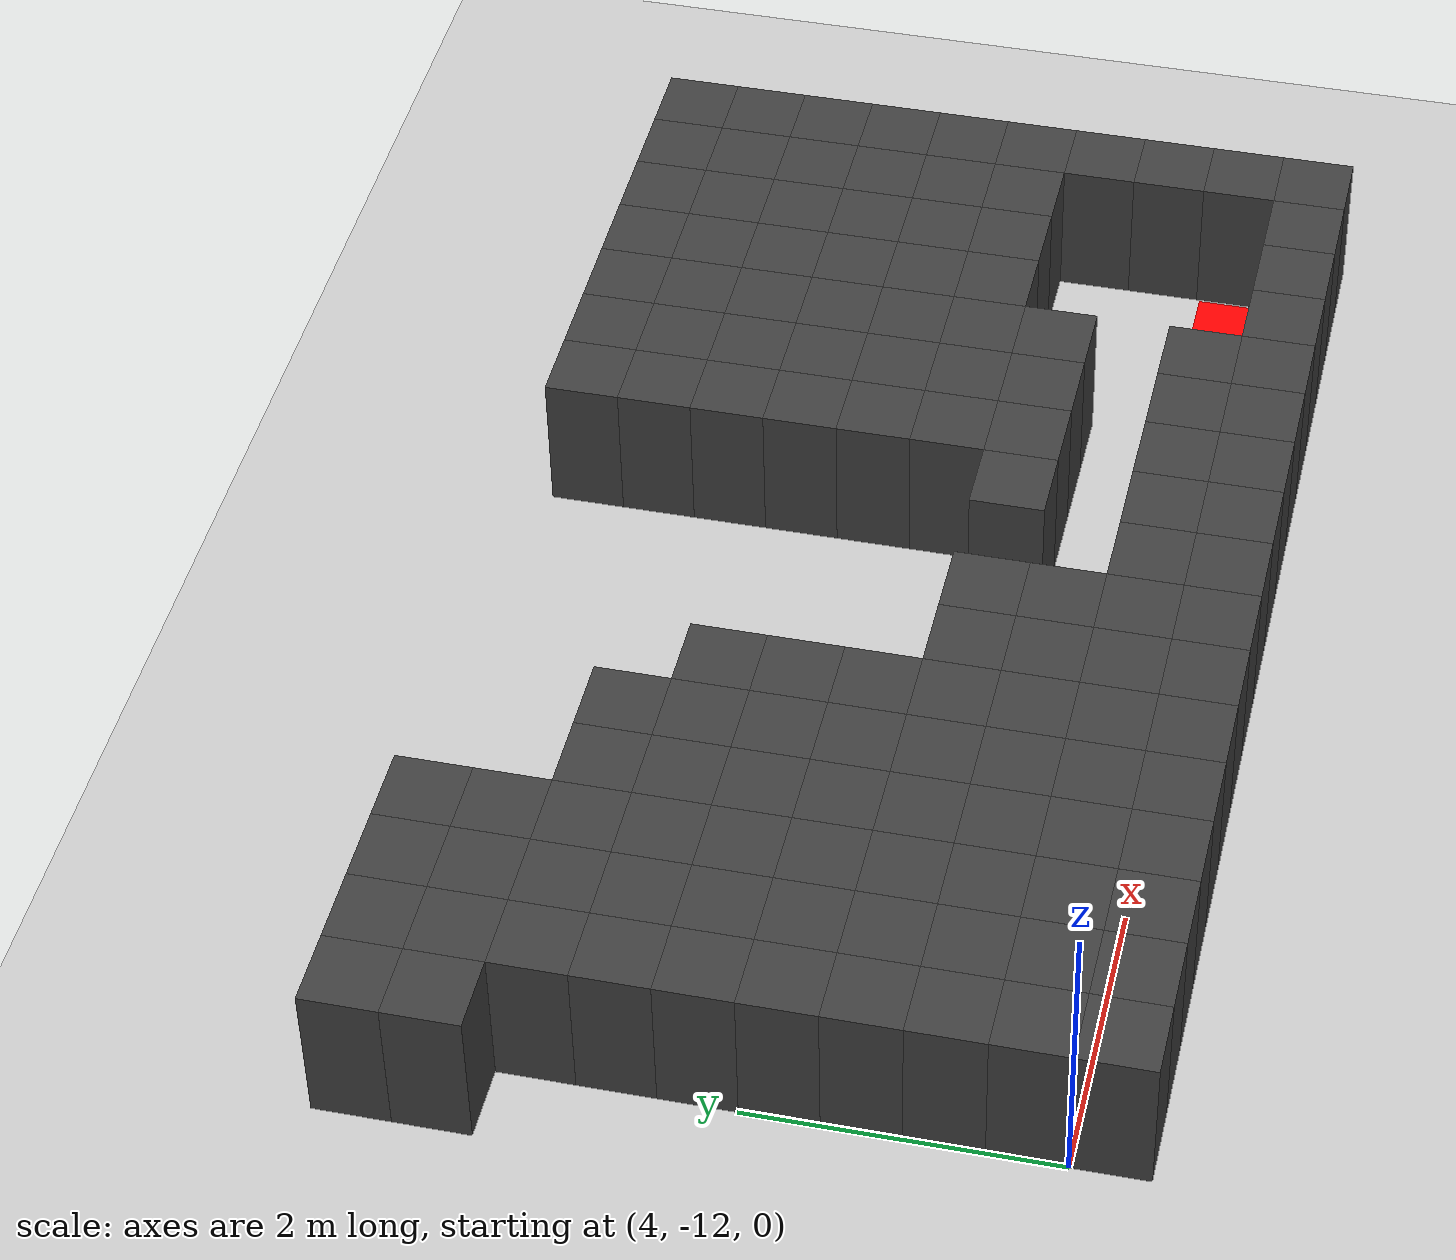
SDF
<sdf version="1.7">
 <world name="map_14980">
  <model name="ground_plane">
   <static>true</static>
   <link name="link">
    <collision name="collision">
     <geometry><plane><normal>0 0 1</normal><size>200 200</size></plane></geometry>
    </collision>
    <visual name="visual">
     <geometry><plane><normal>0 0 1</normal><size>200 200</size></plane></geometry>
     <material><ambient>0.8 0.8 0.8 1</ambient><diffuse>0.8 0.8 0.8 1</diffuse></material>
    </visual>
   </link>
  </model>
  <model name="maze_environment">
   <static>true</static>
   <link name="wall_1472">
    <pose>3.750 -7.750 0.500 0 0 0</pose>
    <collision name="col"><geometry><box><size>0.5 0.5 1.0</size></box></geometry></collision>
    <visual name="vis">
     <geometry><box><size>0.5 0.5 1.0</size></box></geometry>
     <material><ambient>0.15 0.15 0.15 1</ambient><diffuse>0.25 0.25 0.25 1</diffuse></material>
    </visual>
   </link>
   <link name="wall_1473">
    <pose>4.250 -7.750 0.500 0 0 0</pose>
    <collision name="col"><geometry><box><size>0.5 0.5 1.0</size></box></geometry></collision>
    <visual name="vis">
     <geometry><box><size>0.5 0.5 1.0</size></box></geometry>
     <material><ambient>0.15 0.15 0.15 1</ambient><diffuse>0.25 0.25 0.25 1</diffuse></material>
    </visual>
   </link>
   <link name="wall_1474">
    <pose>4.750 -7.750 0.500 0 0 0</pose>
    <collision name="col"><geometry><box><size>0.5 0.5 1.0</size></box></geometry></collision>
    <visual name="vis">
     <geometry><box><size>0.5 0.5 1.0</size></box></geometry>
     <material><ambient>0.15 0.15 0.15 1</ambient><diffuse>0.25 0.25 0.25 1</diffuse></material>
    </visual>
   </link>
   <link name="wall_1475">
    <pose>5.250 -7.750 0.500 0 0 0</pose>
    <collision name="col"><geometry><box><size>0.5 0.5 1.0</size></box></geometry></collision>
    <visual name="vis">
     <geometry><box><size>0.5 0.5 1.0</size></box></geometry>
     <material><ambient>0.15 0.15 0.15 1</ambient><diffuse>0.25 0.25 0.25 1</diffuse></material>
    </visual>
   </link>
   <link name="wall_1476">
    <pose>9.250 -7.750 0.500 0 0 0</pose>
    <collision name="col"><geometry><box><size>0.5 0.5 1.0</size></box></geometry></collision>
    <visual name="vis">
     <geometry><box><size>0.5 0.5 1.0</size></box></geometry>
     <material><ambient>0.15 0.15 0.15 1</ambient><diffuse>0.25 0.25 0.25 1</diffuse></material>
    </visual>
   </link>
   <link name="wall_1477">
    <pose>9.750 -7.750 0.500 0 0 0</pose>
    <collision name="col"><geometry><box><size>0.5 0.5 1.0</size></box></geometry></collision>
    <visual name="vis">
     <geometry><box><size>0.5 0.5 1.0</size></box></geometry>
     <material><ambient>0.15 0.15 0.15 1</ambient><diffuse>0.25 0.25 0.25 1</diffuse></material>
    </visual>
   </link>
   <link name="wall_1478">
    <pose>10.250 -7.750 0.500 0 0 0</pose>
    <collision name="col"><geometry><box><size>0.5 0.5 1.0</size></box></geometry></collision>
    <visual name="vis">
     <geometry><box><size>0.5 0.5 1.0</size></box></geometry>
     <material><ambient>0.15 0.15 0.15 1</ambient><diffuse>0.25 0.25 0.25 1</diffuse></material>
    </visual>
   </link>
   <link name="wall_1479">
    <pose>10.750 -7.750 0.500 0 0 0</pose>
    <collision name="col"><geometry><box><size>0.5 0.5 1.0</size></box></geometry></collision>
    <visual name="vis">
     <geometry><box><size>0.5 0.5 1.0</size></box></geometry>
     <material><ambient>0.15 0.15 0.15 1</ambient><diffuse>0.25 0.25 0.25 1</diffuse></material>
    </visual>
   </link>
   <link name="wall_1480">
    <pose>11.250 -7.750 0.500 0 0 0</pose>
    <collision name="col"><geometry><box><size>0.5 0.5 1.0</size></box></geometry></collision>
    <visual name="vis">
     <geometry><box><size>0.5 0.5 1.0</size></box></geometry>
     <material><ambient>0.15 0.15 0.15 1</ambient><diffuse>0.25 0.25 0.25 1</diffuse></material>
    </visual>
   </link>
   <link name="wall_1481">
    <pose>11.750 -7.750 0.500 0 0 0</pose>
    <collision name="col"><geometry><box><size>0.5 0.5 1.0</size></box></geometry></collision>
    <visual name="vis">
     <geometry><box><size>0.5 0.5 1.0</size></box></geometry>
     <material><ambient>0.15 0.15 0.15 1</ambient><diffuse>0.25 0.25 0.25 1</diffuse></material>
    </visual>
   </link>
   <link name="wall_1482">
    <pose>12.250 -7.750 0.500 0 0 0</pose>
    <collision name="col"><geometry><box><size>0.5 0.5 1.0</size></box></geometry></collision>
    <visual name="vis">
     <geometry><box><size>0.5 0.5 1.0</size></box></geometry>
     <material><ambient>0.15 0.15 0.15 1</ambient><diffuse>0.25 0.25 0.25 1</diffuse></material>
    </visual>
   </link>
   <link name="wall_1496">
    <pose>3.750 -8.250 0.500 0 0 0</pose>
    <collision name="col"><geometry><box><size>0.5 0.5 1.0</size></box></geometry></collision>
    <visual name="vis">
     <geometry><box><size>0.5 0.5 1.0</size></box></geometry>
     <material><ambient>0.15 0.15 0.15 1</ambient><diffuse>0.25 0.25 0.25 1</diffuse></material>
    </visual>
   </link>
   <link name="wall_1497">
    <pose>4.250 -8.250 0.500 0 0 0</pose>
    <collision name="col"><geometry><box><size>0.5 0.5 1.0</size></box></geometry></collision>
    <visual name="vis">
     <geometry><box><size>0.5 0.5 1.0</size></box></geometry>
     <material><ambient>0.15 0.15 0.15 1</ambient><diffuse>0.25 0.25 0.25 1</diffuse></material>
    </visual>
   </link>
   <link name="wall_1498">
    <pose>4.750 -8.250 0.500 0 0 0</pose>
    <collision name="col"><geometry><box><size>0.5 0.5 1.0</size></box></geometry></collision>
    <visual name="vis">
     <geometry><box><size>0.5 0.5 1.0</size></box></geometry>
     <material><ambient>0.15 0.15 0.15 1</ambient><diffuse>0.25 0.25 0.25 1</diffuse></material>
    </visual>
   </link>
   <link name="wall_1499">
    <pose>5.250 -8.250 0.500 0 0 0</pose>
    <collision name="col"><geometry><box><size>0.5 0.5 1.0</size></box></geometry></collision>
    <visual name="vis">
     <geometry><box><size>0.5 0.5 1.0</size></box></geometry>
     <material><ambient>0.15 0.15 0.15 1</ambient><diffuse>0.25 0.25 0.25 1</diffuse></material>
    </visual>
   </link>
   <link name="wall_1500">
    <pose>9.250 -8.250 0.500 0 0 0</pose>
    <collision name="col"><geometry><box><size>0.5 0.5 1.0</size></box></geometry></collision>
    <visual name="vis">
     <geometry><box><size>0.5 0.5 1.0</size></box></geometry>
     <material><ambient>0.15 0.15 0.15 1</ambient><diffuse>0.25 0.25 0.25 1</diffuse></material>
    </visual>
   </link>
   <link name="wall_1501">
    <pose>9.750 -8.250 0.500 0 0 0</pose>
    <collision name="col"><geometry><box><size>0.5 0.5 1.0</size></box></geometry></collision>
    <visual name="vis">
     <geometry><box><size>0.5 0.5 1.0</size></box></geometry>
     <material><ambient>0.15 0.15 0.15 1</ambient><diffuse>0.25 0.25 0.25 1</diffuse></material>
    </visual>
   </link>
   <link name="wall_1502">
    <pose>10.250 -8.250 0.500 0 0 0</pose>
    <collision name="col"><geometry><box><size>0.5 0.5 1.0</size></box></geometry></collision>
    <visual name="vis">
     <geometry><box><size>0.5 0.5 1.0</size></box></geometry>
     <material><ambient>0.15 0.15 0.15 1</ambient><diffuse>0.25 0.25 0.25 1</diffuse></material>
    </visual>
   </link>
   <link name="wall_1503">
    <pose>10.750 -8.250 0.500 0 0 0</pose>
    <collision name="col"><geometry><box><size>0.5 0.5 1.0</size></box></geometry></collision>
    <visual name="vis">
     <geometry><box><size>0.5 0.5 1.0</size></box></geometry>
     <material><ambient>0.15 0.15 0.15 1</ambient><diffuse>0.25 0.25 0.25 1</diffuse></material>
    </visual>
   </link>
   <link name="wall_1504">
    <pose>11.250 -8.250 0.500 0 0 0</pose>
    <collision name="col"><geometry><box><size>0.5 0.5 1.0</size></box></geometry></collision>
    <visual name="vis">
     <geometry><box><size>0.5 0.5 1.0</size></box></geometry>
     <material><ambient>0.15 0.15 0.15 1</ambient><diffuse>0.25 0.25 0.25 1</diffuse></material>
    </visual>
   </link>
   <link name="wall_1505">
    <pose>11.750 -8.250 0.500 0 0 0</pose>
    <collision name="col"><geometry><box><size>0.5 0.5 1.0</size></box></geometry></collision>
    <visual name="vis">
     <geometry><box><size>0.5 0.5 1.0</size></box></geometry>
     <material><ambient>0.15 0.15 0.15 1</ambient><diffuse>0.25 0.25 0.25 1</diffuse></material>
    </visual>
   </link>
   <link name="wall_1506">
    <pose>12.250 -8.250 0.500 0 0 0</pose>
    <collision name="col"><geometry><box><size>0.5 0.5 1.0</size></box></geometry></collision>
    <visual name="vis">
     <geometry><box><size>0.5 0.5 1.0</size></box></geometry>
     <material><ambient>0.15 0.15 0.15 1</ambient><diffuse>0.25 0.25 0.25 1</diffuse></material>
    </visual>
   </link>
   <link name="wall_1521">
    <pose>4.250 -8.750 0.500 0 0 0</pose>
    <collision name="col"><geometry><box><size>0.5 0.5 1.0</size></box></geometry></collision>
    <visual name="vis">
     <geometry><box><size>0.5 0.5 1.0</size></box></geometry>
     <material><ambient>0.15 0.15 0.15 1</ambient><diffuse>0.25 0.25 0.25 1</diffuse></material>
    </visual>
   </link>
   <link name="wall_1522">
    <pose>4.750 -8.750 0.500 0 0 0</pose>
    <collision name="col"><geometry><box><size>0.5 0.5 1.0</size></box></geometry></collision>
    <visual name="vis">
     <geometry><box><size>0.5 0.5 1.0</size></box></geometry>
     <material><ambient>0.15 0.15 0.15 1</ambient><diffuse>0.25 0.25 0.25 1</diffuse></material>
    </visual>
   </link>
   <link name="wall_1523">
    <pose>5.250 -8.750 0.500 0 0 0</pose>
    <collision name="col"><geometry><box><size>0.5 0.5 1.0</size></box></geometry></collision>
    <visual name="vis">
     <geometry><box><size>0.5 0.5 1.0</size></box></geometry>
     <material><ambient>0.15 0.15 0.15 1</ambient><diffuse>0.25 0.25 0.25 1</diffuse></material>
    </visual>
   </link>
   <link name="wall_1524">
    <pose>5.750 -8.750 0.500 0 0 0</pose>
    <collision name="col"><geometry><box><size>0.5 0.5 1.0</size></box></geometry></collision>
    <visual name="vis">
     <geometry><box><size>0.5 0.5 1.0</size></box></geometry>
     <material><ambient>0.15 0.15 0.15 1</ambient><diffuse>0.25 0.25 0.25 1</diffuse></material>
    </visual>
   </link>
   <link name="wall_1525">
    <pose>6.250 -8.750 0.500 0 0 0</pose>
    <collision name="col"><geometry><box><size>0.5 0.5 1.0</size></box></geometry></collision>
    <visual name="vis">
     <geometry><box><size>0.5 0.5 1.0</size></box></geometry>
     <material><ambient>0.15 0.15 0.15 1</ambient><diffuse>0.25 0.25 0.25 1</diffuse></material>
    </visual>
   </link>
   <link name="wall_1526">
    <pose>9.250 -8.750 0.500 0 0 0</pose>
    <collision name="col"><geometry><box><size>0.5 0.5 1.0</size></box></geometry></collision>
    <visual name="vis">
     <geometry><box><size>0.5 0.5 1.0</size></box></geometry>
     <material><ambient>0.15 0.15 0.15 1</ambient><diffuse>0.25 0.25 0.25 1</diffuse></material>
    </visual>
   </link>
   <link name="wall_1527">
    <pose>9.750 -8.750 0.500 0 0 0</pose>
    <collision name="col"><geometry><box><size>0.5 0.5 1.0</size></box></geometry></collision>
    <visual name="vis">
     <geometry><box><size>0.5 0.5 1.0</size></box></geometry>
     <material><ambient>0.15 0.15 0.15 1</ambient><diffuse>0.25 0.25 0.25 1</diffuse></material>
    </visual>
   </link>
   <link name="wall_1528">
    <pose>10.250 -8.750 0.500 0 0 0</pose>
    <collision name="col"><geometry><box><size>0.5 0.5 1.0</size></box></geometry></collision>
    <visual name="vis">
     <geometry><box><size>0.5 0.5 1.0</size></box></geometry>
     <material><ambient>0.15 0.15 0.15 1</ambient><diffuse>0.25 0.25 0.25 1</diffuse></material>
    </visual>
   </link>
   <link name="wall_1529">
    <pose>10.750 -8.750 0.500 0 0 0</pose>
    <collision name="col"><geometry><box><size>0.5 0.5 1.0</size></box></geometry></collision>
    <visual name="vis">
     <geometry><box><size>0.5 0.5 1.0</size></box></geometry>
     <material><ambient>0.15 0.15 0.15 1</ambient><diffuse>0.25 0.25 0.25 1</diffuse></material>
    </visual>
   </link>
   <link name="wall_1530">
    <pose>11.250 -8.750 0.500 0 0 0</pose>
    <collision name="col"><geometry><box><size>0.5 0.5 1.0</size></box></geometry></collision>
    <visual name="vis">
     <geometry><box><size>0.5 0.5 1.0</size></box></geometry>
     <material><ambient>0.15 0.15 0.15 1</ambient><diffuse>0.25 0.25 0.25 1</diffuse></material>
    </visual>
   </link>
   <link name="wall_1531">
    <pose>11.750 -8.750 0.500 0 0 0</pose>
    <collision name="col"><geometry><box><size>0.5 0.5 1.0</size></box></geometry></collision>
    <visual name="vis">
     <geometry><box><size>0.5 0.5 1.0</size></box></geometry>
     <material><ambient>0.15 0.15 0.15 1</ambient><diffuse>0.25 0.25 0.25 1</diffuse></material>
    </visual>
   </link>
   <link name="wall_1532">
    <pose>12.250 -8.750 0.500 0 0 0</pose>
    <collision name="col"><geometry><box><size>0.5 0.5 1.0</size></box></geometry></collision>
    <visual name="vis">
     <geometry><box><size>0.5 0.5 1.0</size></box></geometry>
     <material><ambient>0.15 0.15 0.15 1</ambient><diffuse>0.25 0.25 0.25 1</diffuse></material>
    </visual>
   </link>
   <link name="wall_1547">
    <pose>4.250 -9.250 0.500 0 0 0</pose>
    <collision name="col"><geometry><box><size>0.5 0.5 1.0</size></box></geometry></collision>
    <visual name="vis">
     <geometry><box><size>0.5 0.5 1.0</size></box></geometry>
     <material><ambient>0.15 0.15 0.15 1</ambient><diffuse>0.25 0.25 0.25 1</diffuse></material>
    </visual>
   </link>
   <link name="wall_1548">
    <pose>4.750 -9.250 0.500 0 0 0</pose>
    <collision name="col"><geometry><box><size>0.5 0.5 1.0</size></box></geometry></collision>
    <visual name="vis">
     <geometry><box><size>0.5 0.5 1.0</size></box></geometry>
     <material><ambient>0.15 0.15 0.15 1</ambient><diffuse>0.25 0.25 0.25 1</diffuse></material>
    </visual>
   </link>
   <link name="wall_1549">
    <pose>5.250 -9.250 0.500 0 0 0</pose>
    <collision name="col"><geometry><box><size>0.5 0.5 1.0</size></box></geometry></collision>
    <visual name="vis">
     <geometry><box><size>0.5 0.5 1.0</size></box></geometry>
     <material><ambient>0.15 0.15 0.15 1</ambient><diffuse>0.25 0.25 0.25 1</diffuse></material>
    </visual>
   </link>
   <link name="wall_1550">
    <pose>5.750 -9.250 0.500 0 0 0</pose>
    <collision name="col"><geometry><box><size>0.5 0.5 1.0</size></box></geometry></collision>
    <visual name="vis">
     <geometry><box><size>0.5 0.5 1.0</size></box></geometry>
     <material><ambient>0.15 0.15 0.15 1</ambient><diffuse>0.25 0.25 0.25 1</diffuse></material>
    </visual>
   </link>
   <link name="wall_1551">
    <pose>6.250 -9.250 0.500 0 0 0</pose>
    <collision name="col"><geometry><box><size>0.5 0.5 1.0</size></box></geometry></collision>
    <visual name="vis">
     <geometry><box><size>0.5 0.5 1.0</size></box></geometry>
     <material><ambient>0.15 0.15 0.15 1</ambient><diffuse>0.25 0.25 0.25 1</diffuse></material>
    </visual>
   </link>
   <link name="wall_1552">
    <pose>6.750 -9.250 0.500 0 0 0</pose>
    <collision name="col"><geometry><box><size>0.5 0.5 1.0</size></box></geometry></collision>
    <visual name="vis">
     <geometry><box><size>0.5 0.5 1.0</size></box></geometry>
     <material><ambient>0.15 0.15 0.15 1</ambient><diffuse>0.25 0.25 0.25 1</diffuse></material>
    </visual>
   </link>
   <link name="wall_1553">
    <pose>9.250 -9.250 0.500 0 0 0</pose>
    <collision name="col"><geometry><box><size>0.5 0.5 1.0</size></box></geometry></collision>
    <visual name="vis">
     <geometry><box><size>0.5 0.5 1.0</size></box></geometry>
     <material><ambient>0.15 0.15 0.15 1</ambient><diffuse>0.25 0.25 0.25 1</diffuse></material>
    </visual>
   </link>
   <link name="wall_1554">
    <pose>9.750 -9.250 0.500 0 0 0</pose>
    <collision name="col"><geometry><box><size>0.5 0.5 1.0</size></box></geometry></collision>
    <visual name="vis">
     <geometry><box><size>0.5 0.5 1.0</size></box></geometry>
     <material><ambient>0.15 0.15 0.15 1</ambient><diffuse>0.25 0.25 0.25 1</diffuse></material>
    </visual>
   </link>
   <link name="wall_1555">
    <pose>10.250 -9.250 0.500 0 0 0</pose>
    <collision name="col"><geometry><box><size>0.5 0.5 1.0</size></box></geometry></collision>
    <visual name="vis">
     <geometry><box><size>0.5 0.5 1.0</size></box></geometry>
     <material><ambient>0.15 0.15 0.15 1</ambient><diffuse>0.25 0.25 0.25 1</diffuse></material>
    </visual>
   </link>
   <link name="wall_1556">
    <pose>10.750 -9.250 0.500 0 0 0</pose>
    <collision name="col"><geometry><box><size>0.5 0.5 1.0</size></box></geometry></collision>
    <visual name="vis">
     <geometry><box><size>0.5 0.5 1.0</size></box></geometry>
     <material><ambient>0.15 0.15 0.15 1</ambient><diffuse>0.25 0.25 0.25 1</diffuse></material>
    </visual>
   </link>
   <link name="wall_1557">
    <pose>11.250 -9.250 0.500 0 0 0</pose>
    <collision name="col"><geometry><box><size>0.5 0.5 1.0</size></box></geometry></collision>
    <visual name="vis">
     <geometry><box><size>0.5 0.5 1.0</size></box></geometry>
     <material><ambient>0.15 0.15 0.15 1</ambient><diffuse>0.25 0.25 0.25 1</diffuse></material>
    </visual>
   </link>
   <link name="wall_1558">
    <pose>11.750 -9.250 0.500 0 0 0</pose>
    <collision name="col"><geometry><box><size>0.5 0.5 1.0</size></box></geometry></collision>
    <visual name="vis">
     <geometry><box><size>0.5 0.5 1.0</size></box></geometry>
     <material><ambient>0.15 0.15 0.15 1</ambient><diffuse>0.25 0.25 0.25 1</diffuse></material>
    </visual>
   </link>
   <link name="wall_1559">
    <pose>12.250 -9.250 0.500 0 0 0</pose>
    <collision name="col"><geometry><box><size>0.5 0.5 1.0</size></box></geometry></collision>
    <visual name="vis">
     <geometry><box><size>0.5 0.5 1.0</size></box></geometry>
     <material><ambient>0.15 0.15 0.15 1</ambient><diffuse>0.25 0.25 0.25 1</diffuse></material>
    </visual>
   </link>
   <link name="wall_1578">
    <pose>4.250 -9.750 0.500 0 0 0</pose>
    <collision name="col"><geometry><box><size>0.5 0.5 1.0</size></box></geometry></collision>
    <visual name="vis">
     <geometry><box><size>0.5 0.5 1.0</size></box></geometry>
     <material><ambient>0.15 0.15 0.15 1</ambient><diffuse>0.25 0.25 0.25 1</diffuse></material>
    </visual>
   </link>
   <link name="wall_1579">
    <pose>4.750 -9.750 0.500 0 0 0</pose>
    <collision name="col"><geometry><box><size>0.5 0.5 1.0</size></box></geometry></collision>
    <visual name="vis">
     <geometry><box><size>0.5 0.5 1.0</size></box></geometry>
     <material><ambient>0.15 0.15 0.15 1</ambient><diffuse>0.25 0.25 0.25 1</diffuse></material>
    </visual>
   </link>
   <link name="wall_1580">
    <pose>5.250 -9.750 0.500 0 0 0</pose>
    <collision name="col"><geometry><box><size>0.5 0.5 1.0</size></box></geometry></collision>
    <visual name="vis">
     <geometry><box><size>0.5 0.5 1.0</size></box></geometry>
     <material><ambient>0.15 0.15 0.15 1</ambient><diffuse>0.25 0.25 0.25 1</diffuse></material>
    </visual>
   </link>
   <link name="wall_1581">
    <pose>5.750 -9.750 0.500 0 0 0</pose>
    <collision name="col"><geometry><box><size>0.5 0.5 1.0</size></box></geometry></collision>
    <visual name="vis">
     <geometry><box><size>0.5 0.5 1.0</size></box></geometry>
     <material><ambient>0.15 0.15 0.15 1</ambient><diffuse>0.25 0.25 0.25 1</diffuse></material>
    </visual>
   </link>
   <link name="wall_1582">
    <pose>6.250 -9.750 0.500 0 0 0</pose>
    <collision name="col"><geometry><box><size>0.5 0.5 1.0</size></box></geometry></collision>
    <visual name="vis">
     <geometry><box><size>0.5 0.5 1.0</size></box></geometry>
     <material><ambient>0.15 0.15 0.15 1</ambient><diffuse>0.25 0.25 0.25 1</diffuse></material>
    </visual>
   </link>
   <link name="wall_1583">
    <pose>6.750 -9.750 0.500 0 0 0</pose>
    <collision name="col"><geometry><box><size>0.5 0.5 1.0</size></box></geometry></collision>
    <visual name="vis">
     <geometry><box><size>0.5 0.5 1.0</size></box></geometry>
     <material><ambient>0.15 0.15 0.15 1</ambient><diffuse>0.25 0.25 0.25 1</diffuse></material>
    </visual>
   </link>
   <link name="wall_1584">
    <pose>9.250 -9.750 0.500 0 0 0</pose>
    <collision name="col"><geometry><box><size>0.5 0.5 1.0</size></box></geometry></collision>
    <visual name="vis">
     <geometry><box><size>0.5 0.5 1.0</size></box></geometry>
     <material><ambient>0.15 0.15 0.15 1</ambient><diffuse>0.25 0.25 0.25 1</diffuse></material>
    </visual>
   </link>
   <link name="wall_1585">
    <pose>9.750 -9.750 0.500 0 0 0</pose>
    <collision name="col"><geometry><box><size>0.5 0.5 1.0</size></box></geometry></collision>
    <visual name="vis">
     <geometry><box><size>0.5 0.5 1.0</size></box></geometry>
     <material><ambient>0.15 0.15 0.15 1</ambient><diffuse>0.25 0.25 0.25 1</diffuse></material>
    </visual>
   </link>
   <link name="wall_1586">
    <pose>10.250 -9.750 0.500 0 0 0</pose>
    <collision name="col"><geometry><box><size>0.5 0.5 1.0</size></box></geometry></collision>
    <visual name="vis">
     <geometry><box><size>0.5 0.5 1.0</size></box></geometry>
     <material><ambient>0.15 0.15 0.15 1</ambient><diffuse>0.25 0.25 0.25 1</diffuse></material>
    </visual>
   </link>
   <link name="wall_1587">
    <pose>10.750 -9.750 0.500 0 0 0</pose>
    <collision name="col"><geometry><box><size>0.5 0.5 1.0</size></box></geometry></collision>
    <visual name="vis">
     <geometry><box><size>0.5 0.5 1.0</size></box></geometry>
     <material><ambient>0.15 0.15 0.15 1</ambient><diffuse>0.25 0.25 0.25 1</diffuse></material>
    </visual>
   </link>
   <link name="wall_1588">
    <pose>11.250 -9.750 0.500 0 0 0</pose>
    <collision name="col"><geometry><box><size>0.5 0.5 1.0</size></box></geometry></collision>
    <visual name="vis">
     <geometry><box><size>0.5 0.5 1.0</size></box></geometry>
     <material><ambient>0.15 0.15 0.15 1</ambient><diffuse>0.25 0.25 0.25 1</diffuse></material>
    </visual>
   </link>
   <link name="wall_1589">
    <pose>11.750 -9.750 0.500 0 0 0</pose>
    <collision name="col"><geometry><box><size>0.5 0.5 1.0</size></box></geometry></collision>
    <visual name="vis">
     <geometry><box><size>0.5 0.5 1.0</size></box></geometry>
     <material><ambient>0.15 0.15 0.15 1</ambient><diffuse>0.25 0.25 0.25 1</diffuse></material>
    </visual>
   </link>
   <link name="wall_1590">
    <pose>12.250 -9.750 0.500 0 0 0</pose>
    <collision name="col"><geometry><box><size>0.5 0.5 1.0</size></box></geometry></collision>
    <visual name="vis">
     <geometry><box><size>0.5 0.5 1.0</size></box></geometry>
     <material><ambient>0.15 0.15 0.15 1</ambient><diffuse>0.25 0.25 0.25 1</diffuse></material>
    </visual>
   </link>
   <link name="wall_1609">
    <pose>4.250 -10.250 0.500 0 0 0</pose>
    <collision name="col"><geometry><box><size>0.5 0.5 1.0</size></box></geometry></collision>
    <visual name="vis">
     <geometry><box><size>0.5 0.5 1.0</size></box></geometry>
     <material><ambient>0.15 0.15 0.15 1</ambient><diffuse>0.25 0.25 0.25 1</diffuse></material>
    </visual>
   </link>
   <link name="wall_1610">
    <pose>4.750 -10.250 0.500 0 0 0</pose>
    <collision name="col"><geometry><box><size>0.5 0.5 1.0</size></box></geometry></collision>
    <visual name="vis">
     <geometry><box><size>0.5 0.5 1.0</size></box></geometry>
     <material><ambient>0.15 0.15 0.15 1</ambient><diffuse>0.25 0.25 0.25 1</diffuse></material>
    </visual>
   </link>
   <link name="wall_1611">
    <pose>5.250 -10.250 0.500 0 0 0</pose>
    <collision name="col"><geometry><box><size>0.5 0.5 1.0</size></box></geometry></collision>
    <visual name="vis">
     <geometry><box><size>0.5 0.5 1.0</size></box></geometry>
     <material><ambient>0.15 0.15 0.15 1</ambient><diffuse>0.25 0.25 0.25 1</diffuse></material>
    </visual>
   </link>
   <link name="wall_1612">
    <pose>5.750 -10.250 0.500 0 0 0</pose>
    <collision name="col"><geometry><box><size>0.5 0.5 1.0</size></box></geometry></collision>
    <visual name="vis">
     <geometry><box><size>0.5 0.5 1.0</size></box></geometry>
     <material><ambient>0.15 0.15 0.15 1</ambient><diffuse>0.25 0.25 0.25 1</diffuse></material>
    </visual>
   </link>
   <link name="wall_1613">
    <pose>6.250 -10.250 0.500 0 0 0</pose>
    <collision name="col"><geometry><box><size>0.5 0.5 1.0</size></box></geometry></collision>
    <visual name="vis">
     <geometry><box><size>0.5 0.5 1.0</size></box></geometry>
     <material><ambient>0.15 0.15 0.15 1</ambient><diffuse>0.25 0.25 0.25 1</diffuse></material>
    </visual>
   </link>
   <link name="wall_1614">
    <pose>6.750 -10.250 0.500 0 0 0</pose>
    <collision name="col"><geometry><box><size>0.5 0.5 1.0</size></box></geometry></collision>
    <visual name="vis">
     <geometry><box><size>0.5 0.5 1.0</size></box></geometry>
     <material><ambient>0.15 0.15 0.15 1</ambient><diffuse>0.25 0.25 0.25 1</diffuse></material>
    </visual>
   </link>
   <link name="wall_1615">
    <pose>9.250 -10.250 0.500 0 0 0</pose>
    <collision name="col"><geometry><box><size>0.5 0.5 1.0</size></box></geometry></collision>
    <visual name="vis">
     <geometry><box><size>0.5 0.5 1.0</size></box></geometry>
     <material><ambient>0.15 0.15 0.15 1</ambient><diffuse>0.25 0.25 0.25 1</diffuse></material>
    </visual>
   </link>
   <link name="wall_1616">
    <pose>9.750 -10.250 0.500 0 0 0</pose>
    <collision name="col"><geometry><box><size>0.5 0.5 1.0</size></box></geometry></collision>
    <visual name="vis">
     <geometry><box><size>0.5 0.5 1.0</size></box></geometry>
     <material><ambient>0.15 0.15 0.15 1</ambient><diffuse>0.25 0.25 0.25 1</diffuse></material>
    </visual>
   </link>
   <link name="wall_1617">
    <pose>10.250 -10.250 0.500 0 0 0</pose>
    <collision name="col"><geometry><box><size>0.5 0.5 1.0</size></box></geometry></collision>
    <visual name="vis">
     <geometry><box><size>0.5 0.5 1.0</size></box></geometry>
     <material><ambient>0.15 0.15 0.15 1</ambient><diffuse>0.25 0.25 0.25 1</diffuse></material>
    </visual>
   </link>
   <link name="wall_1618">
    <pose>10.750 -10.250 0.500 0 0 0</pose>
    <collision name="col"><geometry><box><size>0.5 0.5 1.0</size></box></geometry></collision>
    <visual name="vis">
     <geometry><box><size>0.5 0.5 1.0</size></box></geometry>
     <material><ambient>0.15 0.15 0.15 1</ambient><diffuse>0.25 0.25 0.25 1</diffuse></material>
    </visual>
   </link>
   <link name="wall_1619">
    <pose>11.250 -10.250 0.500 0 0 0</pose>
    <collision name="col"><geometry><box><size>0.5 0.5 1.0</size></box></geometry></collision>
    <visual name="vis">
     <geometry><box><size>0.5 0.5 1.0</size></box></geometry>
     <material><ambient>0.15 0.15 0.15 1</ambient><diffuse>0.25 0.25 0.25 1</diffuse></material>
    </visual>
   </link>
   <link name="wall_1620">
    <pose>11.750 -10.250 0.500 0 0 0</pose>
    <collision name="col"><geometry><box><size>0.5 0.5 1.0</size></box></geometry></collision>
    <visual name="vis">
     <geometry><box><size>0.5 0.5 1.0</size></box></geometry>
     <material><ambient>0.15 0.15 0.15 1</ambient><diffuse>0.25 0.25 0.25 1</diffuse></material>
    </visual>
   </link>
   <link name="wall_1621">
    <pose>12.250 -10.250 0.500 0 0 0</pose>
    <collision name="col"><geometry><box><size>0.5 0.5 1.0</size></box></geometry></collision>
    <visual name="vis">
     <geometry><box><size>0.5 0.5 1.0</size></box></geometry>
     <material><ambient>0.15 0.15 0.15 1</ambient><diffuse>0.25 0.25 0.25 1</diffuse></material>
    </visual>
   </link>
   <link name="wall_1642">
    <pose>4.250 -10.750 0.500 0 0 0</pose>
    <collision name="col"><geometry><box><size>0.5 0.5 1.0</size></box></geometry></collision>
    <visual name="vis">
     <geometry><box><size>0.5 0.5 1.0</size></box></geometry>
     <material><ambient>0.15 0.15 0.15 1</ambient><diffuse>0.25 0.25 0.25 1</diffuse></material>
    </visual>
   </link>
   <link name="wall_1643">
    <pose>4.750 -10.750 0.500 0 0 0</pose>
    <collision name="col"><geometry><box><size>0.5 0.5 1.0</size></box></geometry></collision>
    <visual name="vis">
     <geometry><box><size>0.5 0.5 1.0</size></box></geometry>
     <material><ambient>0.15 0.15 0.15 1</ambient><diffuse>0.25 0.25 0.25 1</diffuse></material>
    </visual>
   </link>
   <link name="wall_1644">
    <pose>5.250 -10.750 0.500 0 0 0</pose>
    <collision name="col"><geometry><box><size>0.5 0.5 1.0</size></box></geometry></collision>
    <visual name="vis">
     <geometry><box><size>0.5 0.5 1.0</size></box></geometry>
     <material><ambient>0.15 0.15 0.15 1</ambient><diffuse>0.25 0.25 0.25 1</diffuse></material>
    </visual>
   </link>
   <link name="wall_1645">
    <pose>5.750 -10.750 0.500 0 0 0</pose>
    <collision name="col"><geometry><box><size>0.5 0.5 1.0</size></box></geometry></collision>
    <visual name="vis">
     <geometry><box><size>0.5 0.5 1.0</size></box></geometry>
     <material><ambient>0.15 0.15 0.15 1</ambient><diffuse>0.25 0.25 0.25 1</diffuse></material>
    </visual>
   </link>
   <link name="wall_1646">
    <pose>6.250 -10.750 0.500 0 0 0</pose>
    <collision name="col"><geometry><box><size>0.5 0.5 1.0</size></box></geometry></collision>
    <visual name="vis">
     <geometry><box><size>0.5 0.5 1.0</size></box></geometry>
     <material><ambient>0.15 0.15 0.15 1</ambient><diffuse>0.25 0.25 0.25 1</diffuse></material>
    </visual>
   </link>
   <link name="wall_1647">
    <pose>6.750 -10.750 0.500 0 0 0</pose>
    <collision name="col"><geometry><box><size>0.5 0.5 1.0</size></box></geometry></collision>
    <visual name="vis">
     <geometry><box><size>0.5 0.5 1.0</size></box></geometry>
     <material><ambient>0.15 0.15 0.15 1</ambient><diffuse>0.25 0.25 0.25 1</diffuse></material>
    </visual>
   </link>
   <link name="wall_1648">
    <pose>7.250 -10.750 0.500 0 0 0</pose>
    <collision name="col"><geometry><box><size>0.5 0.5 1.0</size></box></geometry></collision>
    <visual name="vis">
     <geometry><box><size>0.5 0.5 1.0</size></box></geometry>
     <material><ambient>0.15 0.15 0.15 1</ambient><diffuse>0.25 0.25 0.25 1</diffuse></material>
    </visual>
   </link>
   <link name="wall_1649">
    <pose>7.750 -10.750 0.500 0 0 0</pose>
    <collision name="col"><geometry><box><size>0.5 0.5 1.0</size></box></geometry></collision>
    <visual name="vis">
     <geometry><box><size>0.5 0.5 1.0</size></box></geometry>
     <material><ambient>0.15 0.15 0.15 1</ambient><diffuse>0.25 0.25 0.25 1</diffuse></material>
    </visual>
   </link>
   <link name="wall_1650">
    <pose>8.750 -10.750 0.500 0 0 0</pose>
    <collision name="col"><geometry><box><size>0.5 0.5 1.0</size></box></geometry></collision>
    <visual name="vis">
     <geometry><box><size>0.5 0.5 1.0</size></box></geometry>
     <material><ambient>0.15 0.15 0.15 1</ambient><diffuse>0.25 0.25 0.25 1</diffuse></material>
    </visual>
   </link>
   <link name="wall_1651">
    <pose>9.250 -10.750 0.500 0 0 0</pose>
    <collision name="col"><geometry><box><size>0.5 0.5 1.0</size></box></geometry></collision>
    <visual name="vis">
     <geometry><box><size>0.5 0.5 1.0</size></box></geometry>
     <material><ambient>0.15 0.15 0.15 1</ambient><diffuse>0.25 0.25 0.25 1</diffuse></material>
    </visual>
   </link>
   <link name="wall_1652">
    <pose>9.750 -10.750 0.500 0 0 0</pose>
    <collision name="col"><geometry><box><size>0.5 0.5 1.0</size></box></geometry></collision>
    <visual name="vis">
     <geometry><box><size>0.5 0.5 1.0</size></box></geometry>
     <material><ambient>0.15 0.15 0.15 1</ambient><diffuse>0.25 0.25 0.25 1</diffuse></material>
    </visual>
   </link>
   <link name="wall_1653">
    <pose>10.250 -10.750 0.500 0 0 0</pose>
    <collision name="col"><geometry><box><size>0.5 0.5 1.0</size></box></geometry></collision>
    <visual name="vis">
     <geometry><box><size>0.5 0.5 1.0</size></box></geometry>
     <material><ambient>0.15 0.15 0.15 1</ambient><diffuse>0.25 0.25 0.25 1</diffuse></material>
    </visual>
   </link>
   <link name="wall_1654">
    <pose>12.250 -10.750 0.500 0 0 0</pose>
    <collision name="col"><geometry><box><size>0.5 0.5 1.0</size></box></geometry></collision>
    <visual name="vis">
     <geometry><box><size>0.5 0.5 1.0</size></box></geometry>
     <material><ambient>0.15 0.15 0.15 1</ambient><diffuse>0.25 0.25 0.25 1</diffuse></material>
    </visual>
   </link>
   <link name="wall_1682">
    <pose>4.250 -11.250 0.500 0 0 0</pose>
    <collision name="col"><geometry><box><size>0.5 0.5 1.0</size></box></geometry></collision>
    <visual name="vis">
     <geometry><box><size>0.5 0.5 1.0</size></box></geometry>
     <material><ambient>0.15 0.15 0.15 1</ambient><diffuse>0.25 0.25 0.25 1</diffuse></material>
    </visual>
   </link>
   <link name="wall_1683">
    <pose>4.750 -11.250 0.500 0 0 0</pose>
    <collision name="col"><geometry><box><size>0.5 0.5 1.0</size></box></geometry></collision>
    <visual name="vis">
     <geometry><box><size>0.5 0.5 1.0</size></box></geometry>
     <material><ambient>0.15 0.15 0.15 1</ambient><diffuse>0.25 0.25 0.25 1</diffuse></material>
    </visual>
   </link>
   <link name="wall_1684">
    <pose>5.250 -11.250 0.500 0 0 0</pose>
    <collision name="col"><geometry><box><size>0.5 0.5 1.0</size></box></geometry></collision>
    <visual name="vis">
     <geometry><box><size>0.5 0.5 1.0</size></box></geometry>
     <material><ambient>0.15 0.15 0.15 1</ambient><diffuse>0.25 0.25 0.25 1</diffuse></material>
    </visual>
   </link>
   <link name="wall_1685">
    <pose>5.750 -11.250 0.500 0 0 0</pose>
    <collision name="col"><geometry><box><size>0.5 0.5 1.0</size></box></geometry></collision>
    <visual name="vis">
     <geometry><box><size>0.5 0.5 1.0</size></box></geometry>
     <material><ambient>0.15 0.15 0.15 1</ambient><diffuse>0.25 0.25 0.25 1</diffuse></material>
    </visual>
   </link>
   <link name="wall_1686">
    <pose>6.250 -11.250 0.500 0 0 0</pose>
    <collision name="col"><geometry><box><size>0.5 0.5 1.0</size></box></geometry></collision>
    <visual name="vis">
     <geometry><box><size>0.5 0.5 1.0</size></box></geometry>
     <material><ambient>0.15 0.15 0.15 1</ambient><diffuse>0.25 0.25 0.25 1</diffuse></material>
    </visual>
   </link>
   <link name="wall_1687">
    <pose>6.750 -11.250 0.500 0 0 0</pose>
    <collision name="col"><geometry><box><size>0.5 0.5 1.0</size></box></geometry></collision>
    <visual name="vis">
     <geometry><box><size>0.5 0.5 1.0</size></box></geometry>
     <material><ambient>0.15 0.15 0.15 1</ambient><diffuse>0.25 0.25 0.25 1</diffuse></material>
    </visual>
   </link>
   <link name="wall_1688">
    <pose>7.250 -11.250 0.500 0 0 0</pose>
    <collision name="col"><geometry><box><size>0.5 0.5 1.0</size></box></geometry></collision>
    <visual name="vis">
     <geometry><box><size>0.5 0.5 1.0</size></box></geometry>
     <material><ambient>0.15 0.15 0.15 1</ambient><diffuse>0.25 0.25 0.25 1</diffuse></material>
    </visual>
   </link>
   <link name="wall_1689">
    <pose>7.750 -11.250 0.500 0 0 0</pose>
    <collision name="col"><geometry><box><size>0.5 0.5 1.0</size></box></geometry></collision>
    <visual name="vis">
     <geometry><box><size>0.5 0.5 1.0</size></box></geometry>
     <material><ambient>0.15 0.15 0.15 1</ambient><diffuse>0.25 0.25 0.25 1</diffuse></material>
    </visual>
   </link>
   <link name="wall_1690">
    <pose>12.250 -11.250 0.500 0 0 0</pose>
    <collision name="col"><geometry><box><size>0.5 0.5 1.0</size></box></geometry></collision>
    <visual name="vis">
     <geometry><box><size>0.5 0.5 1.0</size></box></geometry>
     <material><ambient>0.15 0.15 0.15 1</ambient><diffuse>0.25 0.25 0.25 1</diffuse></material>
    </visual>
   </link>
   <link name="wall_1724">
    <pose>4.250 -11.750 0.500 0 0 0</pose>
    <collision name="col"><geometry><box><size>0.5 0.5 1.0</size></box></geometry></collision>
    <visual name="vis">
     <geometry><box><size>0.5 0.5 1.0</size></box></geometry>
     <material><ambient>0.15 0.15 0.15 1</ambient><diffuse>0.25 0.25 0.25 1</diffuse></material>
    </visual>
   </link>
   <link name="wall_1725">
    <pose>4.750 -11.750 0.500 0 0 0</pose>
    <collision name="col"><geometry><box><size>0.5 0.5 1.0</size></box></geometry></collision>
    <visual name="vis">
     <geometry><box><size>0.5 0.5 1.0</size></box></geometry>
     <material><ambient>0.15 0.15 0.15 1</ambient><diffuse>0.25 0.25 0.25 1</diffuse></material>
    </visual>
   </link>
   <link name="wall_1726">
    <pose>5.250 -11.750 0.500 0 0 0</pose>
    <collision name="col"><geometry><box><size>0.5 0.5 1.0</size></box></geometry></collision>
    <visual name="vis">
     <geometry><box><size>0.5 0.5 1.0</size></box></geometry>
     <material><ambient>0.15 0.15 0.15 1</ambient><diffuse>0.25 0.25 0.25 1</diffuse></material>
    </visual>
   </link>
   <link name="wall_1727">
    <pose>5.750 -11.750 0.500 0 0 0</pose>
    <collision name="col"><geometry><box><size>0.5 0.5 1.0</size></box></geometry></collision>
    <visual name="vis">
     <geometry><box><size>0.5 0.5 1.0</size></box></geometry>
     <material><ambient>0.15 0.15 0.15 1</ambient><diffuse>0.25 0.25 0.25 1</diffuse></material>
    </visual>
   </link>
   <link name="wall_1728">
    <pose>6.250 -11.750 0.500 0 0 0</pose>
    <collision name="col"><geometry><box><size>0.5 0.5 1.0</size></box></geometry></collision>
    <visual name="vis">
     <geometry><box><size>0.5 0.5 1.0</size></box></geometry>
     <material><ambient>0.15 0.15 0.15 1</ambient><diffuse>0.25 0.25 0.25 1</diffuse></material>
    </visual>
   </link>
   <link name="wall_1729">
    <pose>6.750 -11.750 0.500 0 0 0</pose>
    <collision name="col"><geometry><box><size>0.5 0.5 1.0</size></box></geometry></collision>
    <visual name="vis">
     <geometry><box><size>0.5 0.5 1.0</size></box></geometry>
     <material><ambient>0.15 0.15 0.15 1</ambient><diffuse>0.25 0.25 0.25 1</diffuse></material>
    </visual>
   </link>
   <link name="wall_1730">
    <pose>7.250 -11.750 0.500 0 0 0</pose>
    <collision name="col"><geometry><box><size>0.5 0.5 1.0</size></box></geometry></collision>
    <visual name="vis">
     <geometry><box><size>0.5 0.5 1.0</size></box></geometry>
     <material><ambient>0.15 0.15 0.15 1</ambient><diffuse>0.25 0.25 0.25 1</diffuse></material>
    </visual>
   </link>
   <link name="wall_1731">
    <pose>7.750 -11.750 0.500 0 0 0</pose>
    <collision name="col"><geometry><box><size>0.5 0.5 1.0</size></box></geometry></collision>
    <visual name="vis">
     <geometry><box><size>0.5 0.5 1.0</size></box></geometry>
     <material><ambient>0.15 0.15 0.15 1</ambient><diffuse>0.25 0.25 0.25 1</diffuse></material>
    </visual>
   </link>
   <link name="wall_1732">
    <pose>8.250 -11.750 0.500 0 0 0</pose>
    <collision name="col"><geometry><box><size>0.5 0.5 1.0</size></box></geometry></collision>
    <visual name="vis">
     <geometry><box><size>0.5 0.5 1.0</size></box></geometry>
     <material><ambient>0.15 0.15 0.15 1</ambient><diffuse>0.25 0.25 0.25 1</diffuse></material>
    </visual>
   </link>
   <link name="wall_1733">
    <pose>8.750 -11.750 0.500 0 0 0</pose>
    <collision name="col"><geometry><box><size>0.5 0.5 1.0</size></box></geometry></collision>
    <visual name="vis">
     <geometry><box><size>0.5 0.5 1.0</size></box></geometry>
     <material><ambient>0.15 0.15 0.15 1</ambient><diffuse>0.25 0.25 0.25 1</diffuse></material>
    </visual>
   </link>
   <link name="wall_1734">
    <pose>9.250 -11.750 0.500 0 0 0</pose>
    <collision name="col"><geometry><box><size>0.5 0.5 1.0</size></box></geometry></collision>
    <visual name="vis">
     <geometry><box><size>0.5 0.5 1.0</size></box></geometry>
     <material><ambient>0.15 0.15 0.15 1</ambient><diffuse>0.25 0.25 0.25 1</diffuse></material>
    </visual>
   </link>
   <link name="wall_1735">
    <pose>9.750 -11.750 0.500 0 0 0</pose>
    <collision name="col"><geometry><box><size>0.5 0.5 1.0</size></box></geometry></collision>
    <visual name="vis">
     <geometry><box><size>0.5 0.5 1.0</size></box></geometry>
     <material><ambient>0.15 0.15 0.15 1</ambient><diffuse>0.25 0.25 0.25 1</diffuse></material>
    </visual>
   </link>
   <link name="wall_1736">
    <pose>10.250 -11.750 0.500 0 0 0</pose>
    <collision name="col"><geometry><box><size>0.5 0.5 1.0</size></box></geometry></collision>
    <visual name="vis">
     <geometry><box><size>0.5 0.5 1.0</size></box></geometry>
     <material><ambient>0.15 0.15 0.15 1</ambient><diffuse>0.25 0.25 0.25 1</diffuse></material>
    </visual>
   </link>
   <link name="wall_1737">
    <pose>12.250 -11.750 0.500 0 0 0</pose>
    <collision name="col"><geometry><box><size>0.5 0.5 1.0</size></box></geometry></collision>
    <visual name="vis">
     <geometry><box><size>0.5 0.5 1.0</size></box></geometry>
     <material><ambient>0.15 0.15 0.15 1</ambient><diffuse>0.25 0.25 0.25 1</diffuse></material>
    </visual>
   </link>
   <link name="wall_1771">
    <pose>4.250 -12.250 0.500 0 0 0</pose>
    <collision name="col"><geometry><box><size>0.5 0.5 1.0</size></box></geometry></collision>
    <visual name="vis">
     <geometry><box><size>0.5 0.5 1.0</size></box></geometry>
     <material><ambient>0.15 0.15 0.15 1</ambient><diffuse>0.25 0.25 0.25 1</diffuse></material>
    </visual>
   </link>
   <link name="wall_1772">
    <pose>4.750 -12.250 0.500 0 0 0</pose>
    <collision name="col"><geometry><box><size>0.5 0.5 1.0</size></box></geometry></collision>
    <visual name="vis">
     <geometry><box><size>0.5 0.5 1.0</size></box></geometry>
     <material><ambient>0.15 0.15 0.15 1</ambient><diffuse>0.25 0.25 0.25 1</diffuse></material>
    </visual>
   </link>
   <link name="wall_1773">
    <pose>5.250 -12.250 0.500 0 0 0</pose>
    <collision name="col"><geometry><box><size>0.5 0.5 1.0</size></box></geometry></collision>
    <visual name="vis">
     <geometry><box><size>0.5 0.5 1.0</size></box></geometry>
     <material><ambient>0.15 0.15 0.15 1</ambient><diffuse>0.25 0.25 0.25 1</diffuse></material>
    </visual>
   </link>
   <link name="wall_1774">
    <pose>5.750 -12.250 0.500 0 0 0</pose>
    <collision name="col"><geometry><box><size>0.5 0.5 1.0</size></box></geometry></collision>
    <visual name="vis">
     <geometry><box><size>0.5 0.5 1.0</size></box></geometry>
     <material><ambient>0.15 0.15 0.15 1</ambient><diffuse>0.25 0.25 0.25 1</diffuse></material>
    </visual>
   </link>
   <link name="wall_1775">
    <pose>6.250 -12.250 0.500 0 0 0</pose>
    <collision name="col"><geometry><box><size>0.5 0.5 1.0</size></box></geometry></collision>
    <visual name="vis">
     <geometry><box><size>0.5 0.5 1.0</size></box></geometry>
     <material><ambient>0.15 0.15 0.15 1</ambient><diffuse>0.25 0.25 0.25 1</diffuse></material>
    </visual>
   </link>
   <link name="wall_1776">
    <pose>6.750 -12.250 0.500 0 0 0</pose>
    <collision name="col"><geometry><box><size>0.5 0.5 1.0</size></box></geometry></collision>
    <visual name="vis">
     <geometry><box><size>0.5 0.5 1.0</size></box></geometry>
     <material><ambient>0.15 0.15 0.15 1</ambient><diffuse>0.25 0.25 0.25 1</diffuse></material>
    </visual>
   </link>
   <link name="wall_1777">
    <pose>7.250 -12.250 0.500 0 0 0</pose>
    <collision name="col"><geometry><box><size>0.5 0.5 1.0</size></box></geometry></collision>
    <visual name="vis">
     <geometry><box><size>0.5 0.5 1.0</size></box></geometry>
     <material><ambient>0.15 0.15 0.15 1</ambient><diffuse>0.25 0.25 0.25 1</diffuse></material>
    </visual>
   </link>
   <link name="wall_1778">
    <pose>7.750 -12.250 0.500 0 0 0</pose>
    <collision name="col"><geometry><box><size>0.5 0.5 1.0</size></box></geometry></collision>
    <visual name="vis">
     <geometry><box><size>0.5 0.5 1.0</size></box></geometry>
     <material><ambient>0.15 0.15 0.15 1</ambient><diffuse>0.25 0.25 0.25 1</diffuse></material>
    </visual>
   </link>
   <link name="wall_1779">
    <pose>8.250 -12.250 0.500 0 0 0</pose>
    <collision name="col"><geometry><box><size>0.5 0.5 1.0</size></box></geometry></collision>
    <visual name="vis">
     <geometry><box><size>0.5 0.5 1.0</size></box></geometry>
     <material><ambient>0.15 0.15 0.15 1</ambient><diffuse>0.25 0.25 0.25 1</diffuse></material>
    </visual>
   </link>
   <link name="wall_1780">
    <pose>8.750 -12.250 0.500 0 0 0</pose>
    <collision name="col"><geometry><box><size>0.5 0.5 1.0</size></box></geometry></collision>
    <visual name="vis">
     <geometry><box><size>0.5 0.5 1.0</size></box></geometry>
     <material><ambient>0.15 0.15 0.15 1</ambient><diffuse>0.25 0.25 0.25 1</diffuse></material>
    </visual>
   </link>
   <link name="wall_1781">
    <pose>9.250 -12.250 0.500 0 0 0</pose>
    <collision name="col"><geometry><box><size>0.5 0.5 1.0</size></box></geometry></collision>
    <visual name="vis">
     <geometry><box><size>0.5 0.5 1.0</size></box></geometry>
     <material><ambient>0.15 0.15 0.15 1</ambient><diffuse>0.25 0.25 0.25 1</diffuse></material>
    </visual>
   </link>
   <link name="wall_1782">
    <pose>9.750 -12.250 0.500 0 0 0</pose>
    <collision name="col"><geometry><box><size>0.5 0.5 1.0</size></box></geometry></collision>
    <visual name="vis">
     <geometry><box><size>0.5 0.5 1.0</size></box></geometry>
     <material><ambient>0.15 0.15 0.15 1</ambient><diffuse>0.25 0.25 0.25 1</diffuse></material>
    </visual>
   </link>
   <link name="wall_1783">
    <pose>10.250 -12.250 0.500 0 0 0</pose>
    <collision name="col"><geometry><box><size>0.5 0.5 1.0</size></box></geometry></collision>
    <visual name="vis">
     <geometry><box><size>0.5 0.5 1.0</size></box></geometry>
     <material><ambient>0.15 0.15 0.15 1</ambient><diffuse>0.25 0.25 0.25 1</diffuse></material>
    </visual>
   </link>
   <link name="wall_1784">
    <pose>10.750 -12.250 0.500 0 0 0</pose>
    <collision name="col"><geometry><box><size>0.5 0.5 1.0</size></box></geometry></collision>
    <visual name="vis">
     <geometry><box><size>0.5 0.5 1.0</size></box></geometry>
     <material><ambient>0.15 0.15 0.15 1</ambient><diffuse>0.25 0.25 0.25 1</diffuse></material>
    </visual>
   </link>
   <link name="wall_1785">
    <pose>11.250 -12.250 0.500 0 0 0</pose>
    <collision name="col"><geometry><box><size>0.5 0.5 1.0</size></box></geometry></collision>
    <visual name="vis">
     <geometry><box><size>0.5 0.5 1.0</size></box></geometry>
     <material><ambient>0.15 0.15 0.15 1</ambient><diffuse>0.25 0.25 0.25 1</diffuse></material>
    </visual>
   </link>
   <link name="wall_1786">
    <pose>11.750 -12.250 0.500 0 0 0</pose>
    <collision name="col"><geometry><box><size>0.5 0.5 1.0</size></box></geometry></collision>
    <visual name="vis">
     <geometry><box><size>0.5 0.5 1.0</size></box></geometry>
     <material><ambient>0.15 0.15 0.15 1</ambient><diffuse>0.25 0.25 0.25 1</diffuse></material>
    </visual>
   </link>
   <link name="wall_1787">
    <pose>12.250 -12.250 0.500 0 0 0</pose>
    <collision name="col"><geometry><box><size>0.5 0.5 1.0</size></box></geometry></collision>
    <visual name="vis">
     <geometry><box><size>0.5 0.5 1.0</size></box></geometry>
     <material><ambient>0.15 0.15 0.15 1</ambient><diffuse>0.25 0.25 0.25 1</diffuse></material>
    </visual>
   </link>
   <link name="goal_zone">
    <pose>11.750 -11.750 0.005 0 0 0</pose>
    <visual name="vis">
     <geometry><box><size>0.45 0.45 0.01</size></box></geometry>
     <material>
      <ambient>1.0 0.0 0.0 1</ambient>
      <diffuse>1.0 0.0 0.0 1</diffuse>
      <emissive>0.60 0.00 0.00 1</emissive>
     </material>
    </visual>
   </link>
  </model>
 </world>
</sdf>
